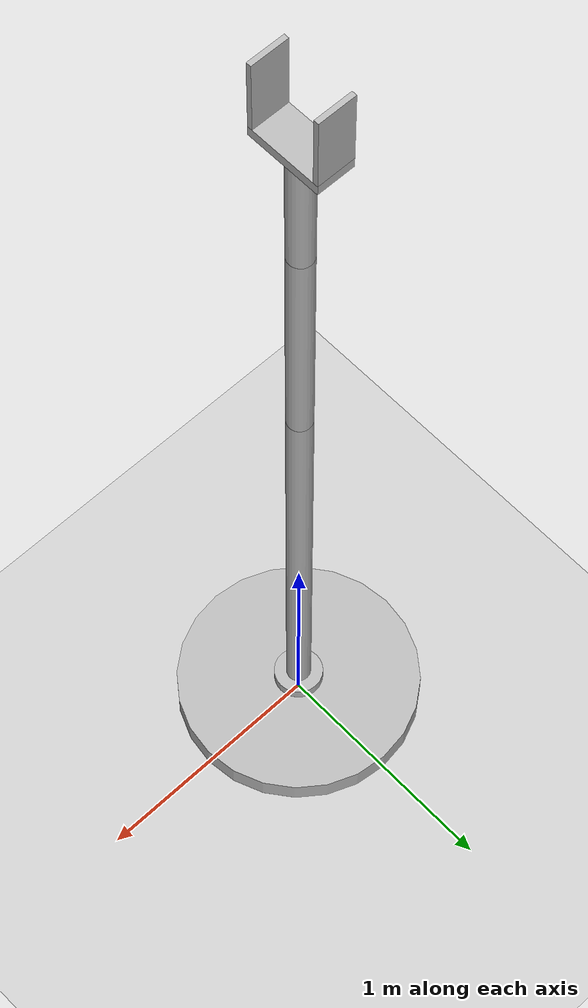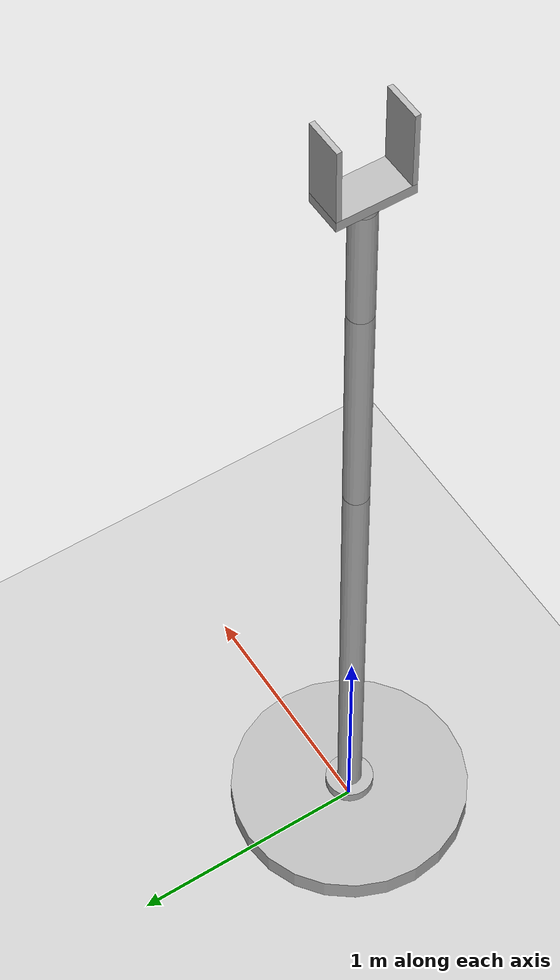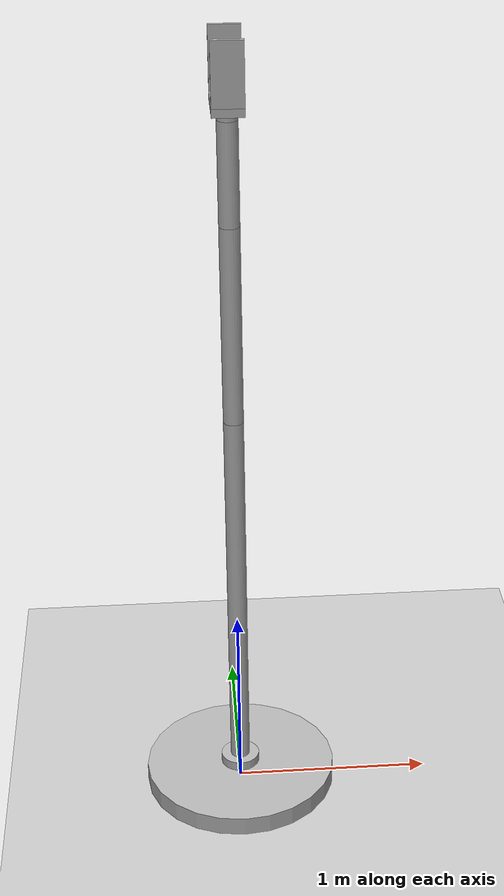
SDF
<?xml version="1.0"?>
<sdf version="1.5">
    <world name="default">

        <include>
            <uri>model://ground_plane</uri>
        </include>
        <include>
            <uri>model://sun</uri>
        </include>

         <include>
      <uri>model://arml</uri>
    </include>
    </world>
</sdf>

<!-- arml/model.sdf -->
<sdf version='1.4'>
    <model name="my_robot">
        <static>false</static>
        <self_collide>1</self_collide>
        <link name='chassis'>
            <pose>0 0 .05 0 0 0</pose>
            <inertial>
                <mass>50</mass>
            </inertial>
            <collision name='collision'>
                <geometry>
                    <cylinder>
                        <radius>.5</radius>
                        <length>.1</length>
                    </cylinder>
                </geometry>
            </collision>

            <visual name='visual'>
                <geometry>
                    <cylinder>
                        <radius>.5</radius>
                        <length>.1</length>
                    </cylinder>
                </geometry>
            </visual>
        </link>
        <link name='arm1'>
            <pose>0 0 .125 0 0 0</pose>
            <inertial>
                <mass>.05</mass>
            </inertial>
            <collision name='collision'>
                <geometry>
                    <cylinder>
                        <radius>.1</radius>
                        <length>.05</length>
                    </cylinder>
                </geometry>
            </collision>

            <visual name='visual'>
                <geometry>
                    <cylinder>
                        <radius>.1</radius>
                        <length>.05</length>
                    </cylinder>
                </geometry>
            </visual>
        </link>
        <link name='arm2'>
            <pose>0 0 1.15 0 0 0</pose>
            <inertial>
                <mass>0.5</mass>
            </inertial>
            <collision name='collision'>
                <geometry>
                    <cylinder>
                        <radius>.05</radius>
                        <length>2.0</length>
                    </cylinder>
                </geometry>
            </collision>

            <visual name='visual'>
                <geometry>
                    <cylinder>
                        <radius>.05</radius>
                        <length>2.0</length>
                    </cylinder>
                </geometry>
            </visual>
        </link>
        <link name="arm3">
            <pose>0 0 2.65 0 0 0</pose>
            <inertial>
                <mass>0.25</mass>
            </inertial>
            <collision name="collision">
                <geometry>
                    <cylinder>
                        <radius>.05</radius>
                        <length>1</length>
                    </cylinder>
                </geometry>
            </collision>
            <visual name="visual">
                <geometry>
                    <cylinder>
                        <radius>.05</radius>
                        <length>1</length>
                    </cylinder>
                </geometry>
            </visual>
        </link>
        <link name="arm4">
            <pose>0 0 3.4 0 0 0</pose>
            <inertial>
                <mass>.125</mass>
            </inertial>
            <collision name="collision">
                <geometry>
                    <cylinder>
                        <radius>.05</radius>
                        <length>0.5</length>
                    </cylinder>
                </geometry>
            </collision>
            <visual name="visual">
                <geometry>
                    <cylinder>
                        <radius>.05</radius>
                        <length>0.5</length>
                    </cylinder>
                </geometry>
            </visual>
        </link>
        <link name="arm5">
            <pose>0 0 3.675 0 0 0</pose>
            <inertial>
                <mass>.005</mass>
            </inertial>
            <collision name="collision">
                <geometry>
                    <cylinder>
                        <radius>.05</radius>
                        <length>.05</length>
                    </cylinder>
                </geometry>
            </collision>
            <visual name="visual">
                <geometry>
                    <cylinder>
                        <radius>.05</radius>
                        <length>.05</length>
                    </cylinder>
                </geometry>
            </visual>
        </link>
        <link name="palm">
            <pose>0 0 3.72 0 0 0</pose>
            <inertial>
                <mass>.005</mass>
            </inertial>
            <collision name="collision">
                <geometry>
                    <box>
                        <size>.15 .3 .04</size>
                    </box>
                </geometry>
            </collision>
            <visual name="visual">
                <geometry>
                    <box>
                        <size>.15 .3 .04</size>
                    </box>
                </geometry>
            </visual>
        </link>
        <link name="leftfinger">
            <pose>0 0.14 3.89 0 0 0</pose>
            <inertial>
                <mass>.005</mass>
            </inertial>
            <collision name="collision">
                <geometry>
                    <box>
                        <size>.15 .02 .3</size>
                    </box>
                </geometry>
                <surface>
                    <friction>
                        <ode>
                            <mu>500</mu>
                            <mu2>500</mu2>
                            <slip1>0.0</slip1>
                            <slip2>0.0</slip2>
                        </ode>
                    </friction>
                    <contact>
                        <ode>
                            <min_depth>5</min_depth>
                            <kp>1e8</kp>
                        </ode>
                    </contact>
                </surface>
            </collision>
            <visual name="visual">
                <geometry>
                    <box>
                        <size>.15 .02 .3</size>
                    </box>
                </geometry>
            </visual>
        </link>
        <link name="rightfinger">
            <pose>0 -0.14 3.89 0 0 0</pose>
            <inertial>
                <mass>.005</mass>
            </inertial>
            <collision name="collision">
                <geometry>
                    <box>
                        <size>.15 .02 .3</size>
                    </box>
                </geometry>
                <surface>
                    <friction>
                        <ode>
                            <mu>500</mu>
                            <mu2>500</mu2>
                            <slip1>0.0</slip1>
                            <slip2>0.0</slip2>
                        </ode>
                    </friction>
                     <contact>
                        <ode>
                            <min_depth>5</min_depth>
                            <kp>1e8</kp>
                        </ode>
                    </contact>
                </surface>
            </collision>
            <visual name="visual">
                <geometry>
                    <box>
                        <size>.15 .02 .3</size>
                    </box>
                </geometry>
            </visual>
        </link>
        <joint type="revolute" name="chasis_arm1_joint">
            <pose>0 0 -0.025 0 0 0</pose>
            <child>arm1</child>
            <parent>chassis</parent>
            <axis>
                <xyz>0 0 1</xyz>
                <dynamics>
                    <damping>2.0</damping>
                    <friction>0.7</friction>
                </dynamics>
                <limit>
                    <effort>100</effort>
                    <velocity>1.0</velocity>
                </limit>
            </axis>
        </joint>
        <joint type="revolute" name="arm1_arm2_joint">
            <pose>0 0 -1 0 0 0</pose>
            <child>arm2</child>
            <parent>arm1</parent>
            <axis>
                <xyz>1 0 0</xyz>
                <dynamics>
                    <damping>1.0</damping>
                    <friction>0.3</friction>
                </dynamics>
                <limit>
                    <lower>-1.0</lower>
                    <upper>1.0</upper>
                    <effort>100</effort>
                    <velocity>1.0</velocity>
                </limit>
            </axis>
        </joint>
        <joint name="arm2_arm3_joint" type="revolute">
            <parent> arm2 </parent>
            <child> arm3 </child>
            <pose> 0 0 -0.5 0 0 0</pose>
            <axis>
                <xyz> 1 0 0  </xyz>
                <dynamics>
                    <damping>1.0</damping>
                    <friction>0.3</friction>
                </dynamics>
                <limit>
                    <effort>100</effort>
                    <velocity>1.0</velocity>
                </limit>
            </axis>
        </joint>
        <joint name="arm3_arm4_joint" type="revolute">
            <parent> arm3 </parent>
            <child> arm4 </child>
            <pose> 0 0 -0.25 0 0 0</pose>
            <axis>
                <xyz> 1 0 0  </xyz>
                <dynamics>
                    <damping>1.0</damping>
                    <friction>0.3</friction>
                </dynamics>
                <limit>
                    <effort>100</effort>
                    <velocity>1.0</velocity>
                </limit>
            </axis>
        </joint>
        <joint name="arm4_arm5_joint" type="revolute">
            <parent> arm4 </parent>
            <child> arm5 </child>
            <pose> 0 0 -0.025 0 0 0</pose>
            <axis>
                <xyz> 0 0 1  </xyz>
                <dynamics>
                    <damping>1.0</damping>
                    <friction>0.3</friction>
                </dynamics>
                <limit>
                    <effort>100</effort>
                    <velocity>1.0</velocity>
                </limit>
            </axis>
        </joint>
        <joint name="arm5_palm_joint" type="revolute">
            <parent> arm5 </parent>
            <child> palm </child>
            <pose> 0 0 -0.02 0 0 0</pose>
            <axis>
                <xyz> 1 0 0  </xyz>
                <dynamics>
                    <damping>1.0</damping>
                    <friction>0.3</friction>
                </dynamics>
                <limit>
                    <effort>100</effort>
                    <velocity>1.0</velocity>
                </limit>
            </axis>
        </joint>
        <joint name="palm_leftfinger_joint" type="revolute">
            <parent> palm </parent>
            <child> leftfinger </child>
            <pose> 0 0 -0.15 0 0 0</pose>
            <axis>
                <xyz> 1 0 0</xyz>
                <dynamics>
                    <damping>1.0</damping>
                    <friction>0.3</friction>
                </dynamics>
                <limit>
                    <lower>-0.7</lower>
                    <upper>0.7</upper>
                    <effort>100</effort>
                    <velocity>1.0</velocity>
                </limit>
            </axis>
        </joint>
        <joint name="palm_rightfinger_joint" type="revolute">
            <parent> palm </parent>
            <child> rightfinger </child>
            <pose> 0 0 -0.15 0 0 0</pose>
            <axis>
                <xyz> 1 0 0 </xyz>
                <dynamics>
                    <damping>1.0</damping>
                    <friction>0.3</friction>
                </dynamics>
                <limit>
                    <lower>-0.7</lower>
                    <upper>0.7</upper>
                    <effort>100</effort>
                    <velocity>1.0</velocity>
                </limit>
            </axis>
        </joint>
    </model>
</sdf>
